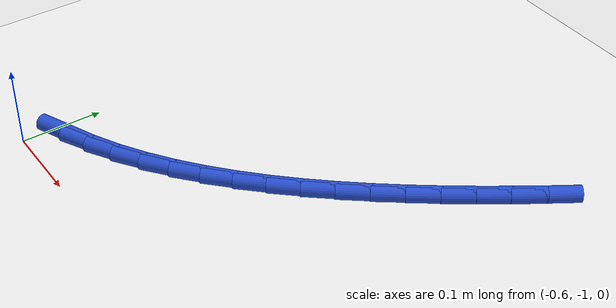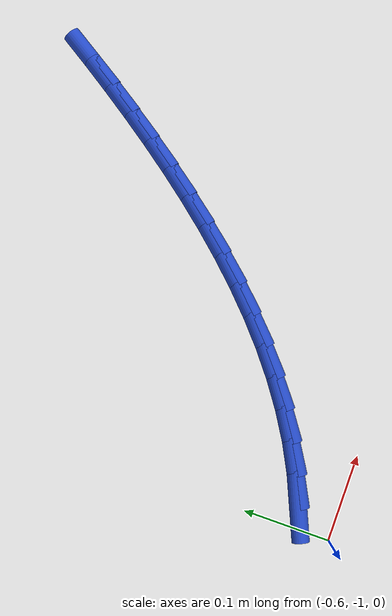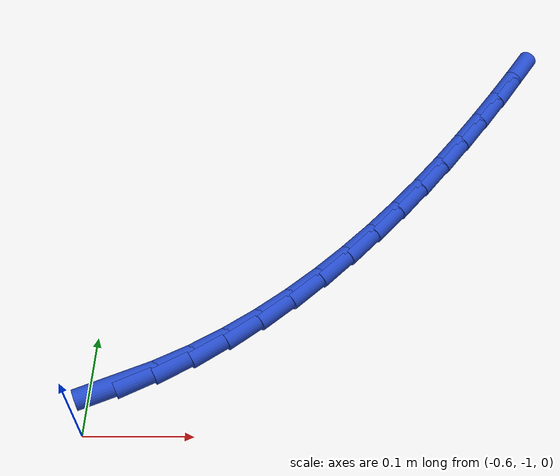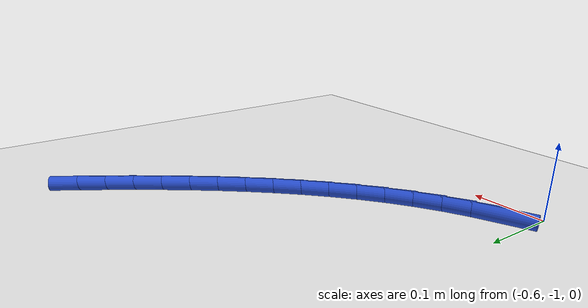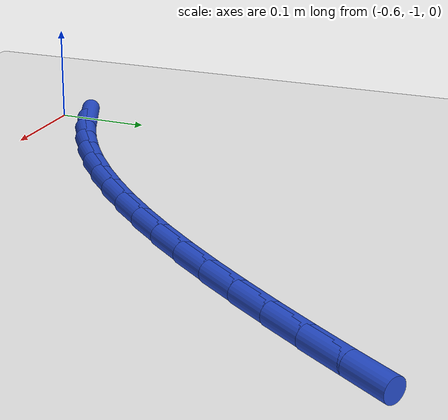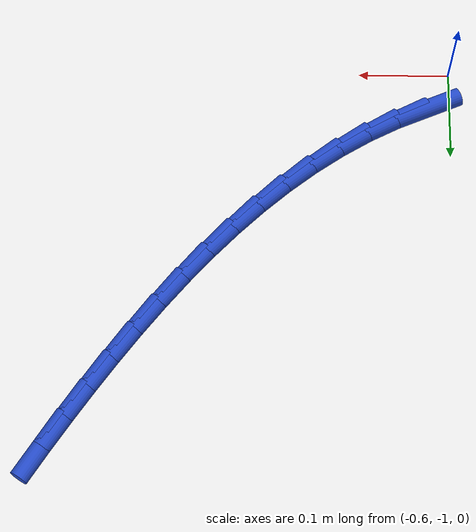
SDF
<sdf version="1.6">
 <world name="default">
  <model name="ground_plane">
   <static>1</static>
   <link name="link">
    <collision name="collision">
     <geometry><plane><normal>0 0 1</normal><size>100 100</size></plane></geometry>
     <surface><friction><ode><mu>100</mu><mu2>50</mu2></ode></friction></surface>
    </collision>
    <visual name="visual">
     <cast_shadows>0</cast_shadows>
     <geometry><plane><normal>0 0 1</normal><size>100 100</size></plane></geometry>
     <material>
      <script><uri>file://media/materials/scripts/gazebo.material</uri><name>Gazebo/WhiteGlow</name></script>
     </material>
    </visual>
   </link>
  </model>
  <model name="line">
   <link name="link_169">
    <pose>-0.5735284066198648 -0.9538115882300499 0.01 0 1.57 0.4102437680742003</pose>
    <collision name="collision">
     <geometry><cylinder><radius>0.01</radius><length>0.08</length></cylinder></geometry>
    </collision>
    <visual name="visual">
     <material>
      <script><name>Gazebo/Blue</name><uri>file://media/materials/scripts/gazebo.material</uri></script>
     </material>
     <geometry><cylinder><radius>0.01</radius><length>0.08</length></cylinder></geometry>
    </visual>
   </link>
   <link name="link_170">
    <pose>-0.5402797599190173 -0.9393510518219438 0.01 0 1.57 0.4837292109004635</pose>
    <collision name="collision">
     <geometry><cylinder><radius>0.01</radius><length>0.08</length></cylinder></geometry>
    </collision>
    <visual name="visual">
     <material>
      <script><name>Gazebo/Blue</name><uri>file://media/materials/scripts/gazebo.material</uri></script>
     </material>
     <geometry><cylinder><radius>0.01</radius><length>0.08</length></cylinder></geometry>
    </visual>
   </link>
   <link name="link_171">
    <pose>-0.5081448257522472 -0.9224686413094839 0.01 0 1.57 0.5524169056713054</pose>
    <collision name="collision">
     <geometry><cylinder><radius>0.01</radius><length>0.08</length></cylinder></geometry>
    </collision>
    <visual name="visual">
     <material>
      <script><name>Gazebo/Blue</name><uri>file://media/materials/scripts/gazebo.material</uri></script>
     </material>
     <geometry><cylinder><radius>0.01</radius><length>0.08</length></cylinder></geometry>
    </visual>
   </link>
   <link name="link_172">
    <pose>-0.4770926345030862 -0.9033269660834031 0.01 0 1.57 0.6155035196461589</pose>
    <collision name="collision">
     <geometry><cylinder><radius>0.01</radius><length>0.08</length></cylinder></geometry>
    </collision>
    <visual name="visual">
     <material>
      <script><name>Gazebo/Blue</name><uri>file://media/materials/scripts/gazebo.material</uri></script>
     </material>
     <geometry><cylinder><radius>0.01</radius><length>0.08</length></cylinder></geometry>
    </visual>
   </link>
   <link name="link_173">
    <pose>-0.44708521101356996 -0.8821074416709336 0.01 0 1.57 0.6729607674190884</pose>
    <collision name="collision">
     <geometry><cylinder><radius>0.01</radius><length>0.08</length></cylinder></geometry>
    </collision>
    <visual name="visual">
     <material>
      <script><name>Gazebo/Blue</name><uri>file://media/materials/scripts/gazebo.material</uri></script>
     </material>
     <geometry><cylinder><radius>0.01</radius><length>0.08</length></cylinder></geometry>
    </visual>
   </link>
   <link name="link_174">
    <pose>-0.41808458012573385 -0.858991483599307 0.01 0 1.57 0.7249220873162653</pose>
    <collision name="collision">
     <geometry><cylinder><radius>0.01</radius><length>0.08</length></cylinder></geometry>
    </collision>
    <visual name="visual">
     <material>
      <script><name>Gazebo/Blue</name><uri>file://media/materials/scripts/gazebo.material</uri></script>
     </material>
     <geometry><cylinder><radius>0.01</radius><length>0.08</length></cylinder></geometry>
    </visual>
   </link>
   <link name="link_175">
    <pose>-0.3900527666816132 -0.8341605073957553 0.01 0 1.57 0.7716258223104143</pose>
    <collision name="collision">
     <geometry><cylinder><radius>0.01</radius><length>0.08</length></cylinder></geometry>
    </collision>
    <visual name="visual">
     <material>
      <script><name>Gazebo/Blue</name><uri>file://media/materials/scripts/gazebo.material</uri></script>
     </material>
     <geometry><cylinder><radius>0.01</radius><length>0.08</length></cylinder></geometry>
    </visual>
   </link>
   <link name="link_176">
    <pose>-0.3629517955232436 -0.8077959285875108 0.01 0 1.57 0.8133679744146508</pose>
    <collision name="collision">
     <geometry><cylinder><radius>0.01</radius><length>0.08</length></cylinder></geometry>
    </collision>
    <visual name="visual">
     <material>
      <script><name>Gazebo/Blue</name><uri>file://media/materials/scripts/gazebo.material</uri></script>
     </material>
     <geometry><cylinder><radius>0.01</radius><length>0.08</length></cylinder></geometry>
    </visual>
   </link>
   <link name="link_177">
    <pose>-0.3367436914926604 -0.7800791627018051 0.01 0 1.57 0.8504661440997334</pose>
    <collision name="collision">
     <geometry><cylinder><radius>0.01</radius><length>0.08</length></cylinder></geometry>
    </collision>
    <visual name="visual">
     <material>
      <script><name>Gazebo/Blue</name><uri>file://media/materials/scripts/gazebo.material</uri></script>
     </material>
     <geometry><cylinder><radius>0.01</radius><length>0.08</length></cylinder></geometry>
    </visual>
   </link>
   <link name="link_178">
    <pose>-0.31139047943189896 -0.7511916252658702 0.01 0 1.57 0.8832337750968694</pose>
    <collision name="collision">
     <geometry><cylinder><radius>0.01</radius><length>0.08</length></cylinder></geometry>
    </collision>
    <visual name="visual">
     <material>
      <script><name>Gazebo/Blue</name><uri>file://media/materials/scripts/gazebo.material</uri></script>
     </material>
     <geometry><cylinder><radius>0.01</radius><length>0.08</length></cylinder></geometry>
    </visual>
   </link>
   <link name="link_179">
    <pose>-0.28685418418299485 -0.7213147318069383 0.01 0 1.57 0.911962719783606</pose>
    <collision name="collision">
     <geometry><cylinder><radius>0.01</radius><length>0.08</length></cylinder></geometry>
    </collision>
    <visual name="visual">
     <material>
      <script><name>Gazebo/Blue</name><uri>file://media/materials/scripts/gazebo.material</uri></script>
     </material>
     <geometry><cylinder><radius>0.01</radius><length>0.08</length></cylinder></geometry>
    </visual>
   </link>
   <link name="link_180">
    <pose>-0.2630968305879836 -0.6906298978522416 0.01 0 1.57 0.9369119073023014</pose>
    <collision name="collision">
     <geometry><cylinder><radius>0.01</radius><length>0.08</length></cylinder></geometry>
    </collision>
    <visual name="visual">
     <material>
      <script><name>Gazebo/Blue</name><uri>file://media/materials/scripts/gazebo.material</uri></script>
     </material>
     <geometry><cylinder><radius>0.01</radius><length>0.08</length></cylinder></geometry>
    </visual>
   </link>
   <link name="link_181">
    <pose>-0.24008044348890045 -0.6593185389290115 0.01 0 1.57 0.9583000970387111</pose>
    <collision name="collision">
     <geometry><cylinder><radius>0.01</radius><length>0.08</length></cylinder></geometry>
    </collision>
    <visual name="visual">
     <material>
      <script><name>Gazebo/Blue</name><uri>file://media/materials/scripts/gazebo.material</uri></script>
     </material>
     <geometry><cylinder><radius>0.01</radius><length>0.08</length></cylinder></geometry>
    </visual>
   </link>
   <link name="link_182">
    <pose>-0.21776704772778083 -0.6275620705644801 0.01 0 1.57 0.9763010470642937</pose>
    <collision name="collision">
     <geometry><cylinder><radius>0.01</radius><length>0.08</length></cylinder></geometry>
    </collision>
    <visual name="visual">
     <material>
      <script><name>Gazebo/Blue</name><uri>file://media/materials/scripts/gazebo.material</uri></script>
     </material>
     <geometry><cylinder><radius>0.01</radius><length>0.08</length></cylinder></geometry>
    </visual>
   </link>
   <link name="link_183">
    <pose>-0.19611866814666026 -0.5955419082858797 0.01 0 1.57 0.9915987700627749</pose>
    <collision name="collision">
     <geometry><cylinder><radius>0.01</radius><length>0.08</length></cylinder></geometry>
    </collision>
    <visual name="visual">
     <material>
      <script><name>Gazebo/Blue</name><uri>file://media/materials/scripts/gazebo.material</uri></script>
     </material>
     <geometry><cylinder><radius>0.01</radius><length>0.08</length></cylinder></geometry>
    </visual>
   </link>
   <link name="link_184">
    <pose>-0.17511026515710046 -0.5634200564713308 0.01 0 1.57 1.0090167816861126</pose>
    <collision name="collision">
     <geometry><cylinder><radius>0.01</radius><length>0.08</length></cylinder></geometry>
    </collision>
    <visual name="visual">
     <material>
      <script><name>Gazebo/Blue</name><uri>file://media/materials/scripts/gazebo.material</uri></script>
     </material>
     <geometry><cylinder><radius>0.01</radius><length>0.08</length></cylinder></geometry>
    </visual>
   </link>
  </model>
 </world>
</sdf>
